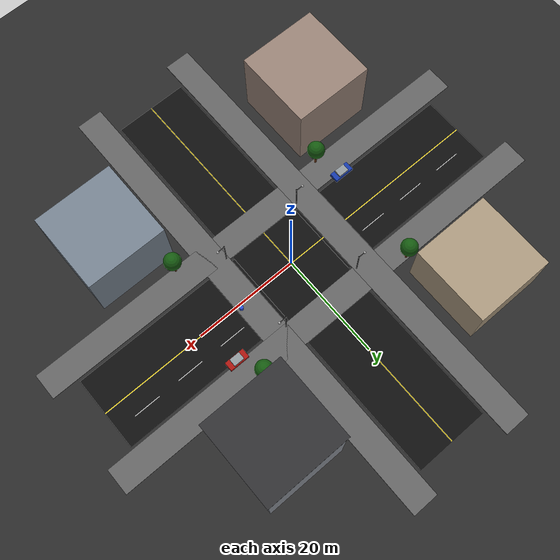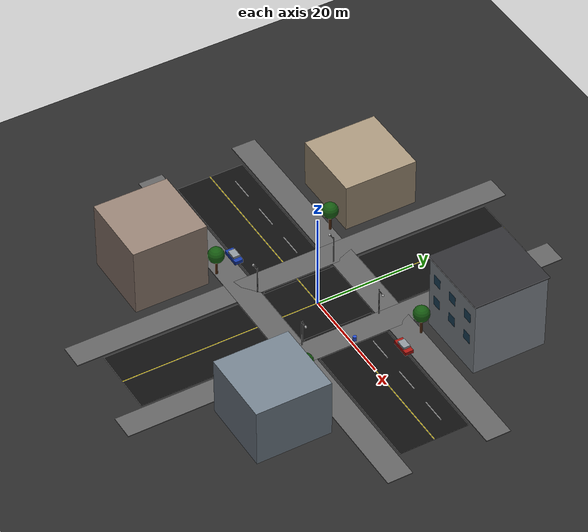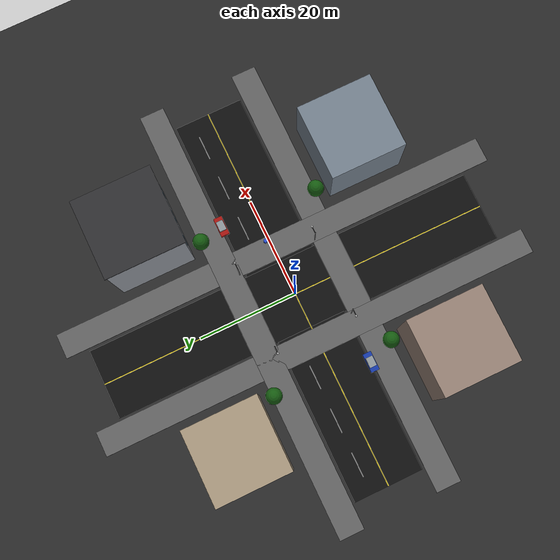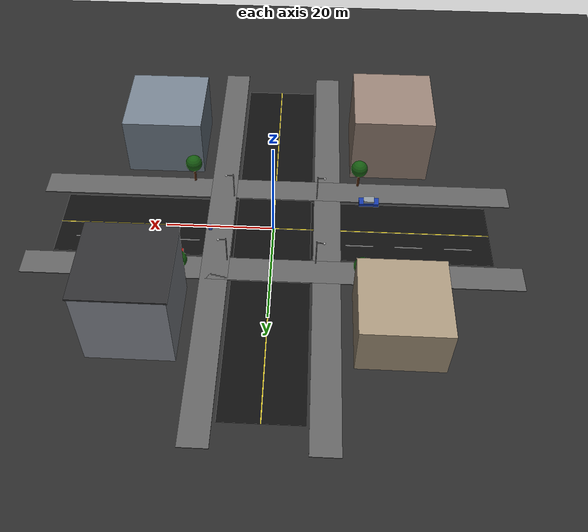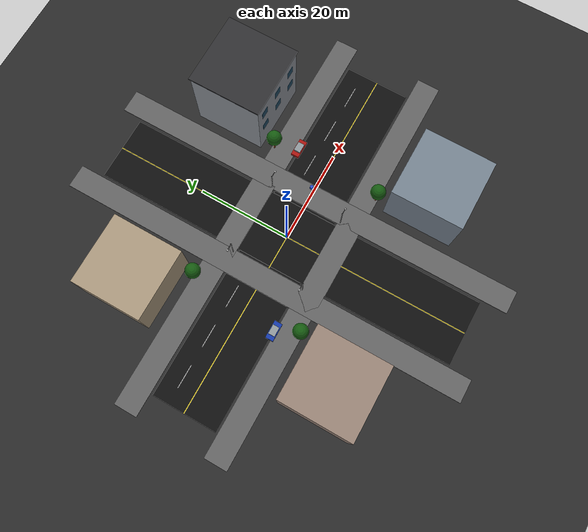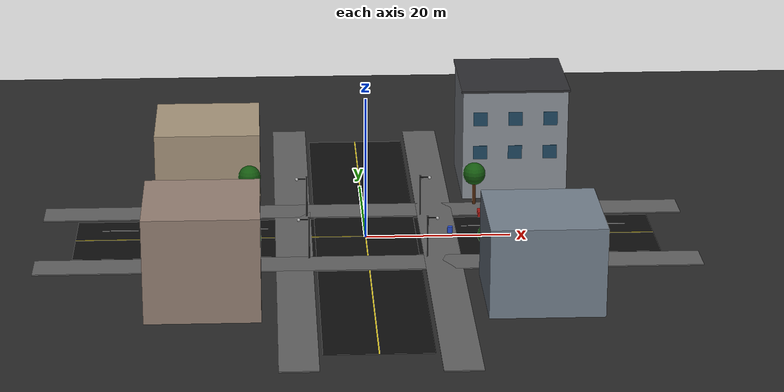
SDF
<sdf version="1.7">
 <world name="urban_city_world">
  <plugin name="gazebo_ros_state" filename="libgazebo_ros_state.so"/>
  <physics type="ode">
   <max_step_size>0.001</max_step_size>
   <real_time_update_rate>1000</real_time_update_rate>
   <real_time_factor>1</real_time_factor>
  </physics>
  <light name="sun" type="directional">
   <pose>0 0 10 0 -0 0</pose>
   <diffuse>0.8 0.8 0.8 1</diffuse>
   <specular>0.2 0.2 0.2 1</specular>
   <attenuation>
    <range>1000</range>
    <constant>0.9</constant>
    <linear>0.01</linear>
    <quadratic>0.001</quadratic>
   </attenuation>
   <direction>-0.5 0.1 -0.9</direction>
   <spot><inner_angle>0</inner_angle><outer_angle>0</outer_angle><falloff>0</falloff></spot>
  </light>
  <light name="city_sky_light" type="directional">
   <pose>0 0 40 0 -0 0</pose>
   <diffuse>0.9 0.9 0.9 1</diffuse>
   <specular>0.25 0.25 0.25 1</specular>
   <direction>-0.35 -0.45 -1</direction>
   <attenuation><range>10</range></attenuation>
   <spot><inner_angle>0</inner_angle><outer_angle>0</outer_angle><falloff>0</falloff></spot>
  </light>
  <model name="ground">
   <static>1</static>
   <link name="ground_link">
    <collision name="ground_collision">
     <geometry><plane><normal>0 0 1</normal><size>120 120</size></plane></geometry>
    </collision>
    <visual name="ground_visual">
     <geometry><plane><normal>0 0 1</normal><size>120 120</size></plane></geometry>
     <material>
      <ambient>0.12 0.12 0.12 1</ambient>
      <diffuse>0.16 0.16 0.16 1</diffuse>
      <specular>0.03 0.03 0.03 1</specular>
     </material>
    </visual>
   </link>
  </model>
  <model name="main_road">
   <static>1</static>
   <link name="road_link">
    <pose>0 0 0.015 0 -0 0</pose>
    <collision name="road_collision"><geometry><box><size>80 14 0.03</size></box></geometry></collision>
    <visual name="road_visual">
     <geometry><box><size>80 14 0.03</size></box></geometry>
     <material>
      <ambient>0.045 0.045 0.045 1</ambient>
      <diffuse>0.055 0.055 0.055 1</diffuse>
      <specular>0.02 0.02 0.02 1</specular>
     </material>
    </visual>
   </link>
  </model>
  <model name="cross_road">
   <static>1</static>
   <link name="road_link">
    <pose>0 0 0.016 0 -0 0</pose>
    <collision name="road_collision"><geometry><box><size>14 80 0.03</size></box></geometry></collision>
    <visual name="road_visual">
     <geometry><box><size>14 80 0.03</size></box></geometry>
     <material><diffuse>0.055 0.055 0.055 1</diffuse></material>
    </visual>
   </link>
  </model>
  <model name="sidewalk_north">
   <static>1</static>
   <link name="link">
    <pose>0 10 0.08 0 -0 0</pose>
    <visual name="visual">
     <geometry><box><size>90 5 0.15</size></box></geometry>
     <material><diffuse>0.38 0.38 0.38 1</diffuse></material>
    </visual>
   </link>
  </model>
  <model name="sidewalk_south">
   <static>1</static>
   <link name="link">
    <pose>0 -10 0.08 0 -0 0</pose>
    <visual name="visual">
     <geometry><box><size>90 5 0.15</size></box></geometry>
     <material><diffuse>0.38 0.38 0.38 1</diffuse></material>
    </visual>
   </link>
  </model>
  <model name="sidewalk_east">
   <pose>0.0685 -0.539138 0 0 -0 0</pose>
   <static>1</static>
   <link name="link">
    <pose>10 0 0.08 0 -0 0</pose>
    <visual name="visual">
     <geometry><box><size>5 90 0.15</size></box></geometry>
     <material><diffuse>0.38 0.38 0.38 1</diffuse></material>
    </visual>
   </link>
  </model>
  <model name="sidewalk_west">
   <static>1</static>
   <link name="link">
    <pose>-10 0 0.08 0 -0 0</pose>
    <visual name="visual">
     <geometry><box><size>5 90 0.15</size></box></geometry>
     <material><diffuse>0.38 0.38 0.38 1</diffuse></material>
    </visual>
   </link>
  </model>
  <model name="center_line">
   <static>1</static>
   <link name="link">
    <pose>0 0 0.045 0 -0 0</pose>
    <visual name="visual">
     <geometry><box><size>80 0.18 0.025</size></box></geometry>
     <material><diffuse>0.95 0.85 0.15 1</diffuse></material>
    </visual>
   </link>
  </model>
  <model name="cross_center_line">
   <static>1</static>
   <link name="link">
    <pose>0 0 0.046 0 -0 0</pose>
    <visual name="visual">
     <geometry><box><size>0.18 80 0.025</size></box></geometry>
     <material><diffuse>0.95 0.85 0.15 1</diffuse></material>
    </visual>
   </link>
  </model>
  <model name="dash_01">
   <static>1</static>
   <link name="l">
    <pose>-34 3.5 0.05 0 -0 0</pose>
    <visual name="v">
     <geometry><box><size>5 0.12 0.025</size></box></geometry>
     <material><diffuse>0.9 0.9 0.9 1</diffuse></material>
    </visual>
   </link>
  </model>
  <model name="dash_02">
   <static>1</static>
   <link name="l">
    <pose>-25 3.5 0.05 0 -0 0</pose>
    <visual name="v">
     <geometry><box><size>5 0.12 0.025</size></box></geometry>
     <material><diffuse>0.9 0.9 0.9 1</diffuse></material>
    </visual>
   </link>
  </model>
  <model name="dash_03">
   <static>1</static>
   <link name="l">
    <pose>-16 3.5 0.05 0 -0 0</pose>
    <visual name="v">
     <geometry><box><size>5 0.12 0.025</size></box></geometry>
     <material><diffuse>0.9 0.9 0.9 1</diffuse></material>
    </visual>
   </link>
  </model>
  <model name="dash_04">
   <static>1</static>
   <link name="l">
    <pose>16 3.5 0.05 0 -0 0</pose>
    <visual name="v">
     <geometry><box><size>5 0.12 0.025</size></box></geometry>
     <material><diffuse>0.9 0.9 0.9 1</diffuse></material>
    </visual>
   </link>
  </model>
  <model name="dash_05">
   <static>1</static>
   <link name="l">
    <pose>25 3.5 0.05 0 -0 0</pose>
    <visual name="v">
     <geometry><box><size>5 0.12 0.025</size></box></geometry>
     <material><diffuse>0.9 0.9 0.9 1</diffuse></material>
    </visual>
   </link>
  </model>
  <model name="dash_06">
   <static>1</static>
   <link name="l">
    <pose>34 3.5 0.05 0 -0 0</pose>
    <visual name="v">
     <geometry><box><size>5 0.12 0.025</size></box></geometry>
     <material><diffuse>0.9 0.9 0.9 1</diffuse></material>
    </visual>
   </link>
  </model>
  <model name="building_01">
   <static>1</static>
   <link name="building">
    <pose>22 22 8 0 -0 0</pose>
    <collision name="collision"><geometry><box><size>15 15 16</size></box></geometry></collision>
    <visual name="body">
     <geometry><box><size>15 15 16</size></box></geometry>
     <material><diffuse>0.55 0.57 0.6 1</diffuse></material>
    </visual>
    <visual name="roof">
     <pose>0 0 8.1 0 -0 0</pose>
     <geometry><box><size>15.5 15.5 0.3</size></box></geometry>
     <material><diffuse>0.18 0.18 0.19 1</diffuse></material>
    </visual>
   </link>
  </model>
  <model name="building_02">
   <static>1</static>
   <link name="building">
    <pose>-22 22 5 0 -0 0</pose>
    <collision name="collision"><geometry><box><size>15 15 10</size></box></geometry></collision>
    <visual name="body">
     <geometry><box><size>15 15 10</size></box></geometry>
     <material><diffuse>0.65 0.58 0.48 1</diffuse></material>
    </visual>
   </link>
  </model>
  <model name="building_03">
   <static>1</static>
   <link name="building">
    <pose>22 -22 6 0 -0 0</pose>
    <collision name="collision"><geometry><box><size>15 15 12</size></box></geometry></collision>
    <visual name="body">
     <geometry><box><size>15 15 12</size></box></geometry>
     <material><diffuse>0.45 0.5 0.55 1</diffuse></material>
    </visual>
   </link>
  </model>
  <model name="building_04">
   <static>1</static>
   <link name="building">
    <pose>-22 -22 7 0 -0 0</pose>
    <collision name="collision"><geometry><box><size>15 15 14</size></box></geometry></collision>
    <visual name="body">
     <geometry><box><size>15 15 14</size></box></geometry>
     <material><diffuse>0.58 0.5 0.45 1</diffuse></material>
    </visual>
   </link>
  </model>
  <model name="building_01_windows">
   <static>1</static>
   <link name="windows">
    <pose>22 14.48 8 0 -0 0</pose>
    <visual name="w1">
     <pose>-5 0 4 0 -0 0</pose>
     <geometry><box><size>2 0.05 2</size></box></geometry>
     <material><diffuse>0.12 0.28 0.38 1</diffuse></material>
    </visual>
    <visual name="w2">
     <pose>0 0 4 0 -0 0</pose>
     <geometry><box><size>2 0.05 2</size></box></geometry>
     <material><diffuse>0.12 0.28 0.38 1</diffuse></material>
    </visual>
    <visual name="w3">
     <pose>5 0 4 0 -0 0</pose>
     <geometry><box><size>2 0.05 2</size></box></geometry>
     <material><diffuse>0.12 0.28 0.38 1</diffuse></material>
    </visual>
    <visual name="w4">
     <pose>-5 0 -1 0 -0 0</pose>
     <geometry><box><size>2 0.05 2</size></box></geometry>
     <material><diffuse>0.12 0.28 0.38 1</diffuse></material>
    </visual>
    <visual name="w5">
     <pose>0 0 -1 0 -0 0</pose>
     <geometry><box><size>2 0.05 2</size></box></geometry>
     <material><diffuse>0.12 0.28 0.38 1</diffuse></material>
    </visual>
    <visual name="w6">
     <pose>5 0 -1 0 -0 0</pose>
     <geometry><box><size>2 0.05 2</size></box></geometry>
     <material><diffuse>0.12 0.28 0.38 1</diffuse></material>
    </visual>
   </link>
  </model>
  <model name="lamp_01">
   <static>1</static>
   <link name="pole">
    <pose>8 8 3 0 -0 0</pose>
    <visual name="pole">
     <geometry><cylinder><radius>0.12</radius><length>6</length></cylinder></geometry>
     <material><diffuse>0.12 0.12 0.12 1</diffuse></material>
    </visual>
    <visual name="arm">
     <pose>0.7 0 2.7 0 -0 0</pose>
     <geometry><box><size>1.5 0.12 0.12</size></box></geometry>
     <material><diffuse>0.12 0.12 0.12 1</diffuse></material>
    </visual>
    <visual name="light">
     <pose>1.35 0 2.65 0 -0 0</pose>
     <geometry><sphere><radius>0.22</radius></sphere></geometry>
     <material><emissive>1 0.9 0.5 1</emissive></material>
    </visual>
   </link>
  </model>
  <model name="lamp_02">
   <static>1</static>
   <link name="pole">
    <pose>-8 8 3 0 -0 0</pose>
    <visual name="pole">
     <geometry><cylinder><radius>0.12</radius><length>6</length></cylinder></geometry>
     <material><diffuse>0.12 0.12 0.12 1</diffuse></material>
    </visual>
    <visual name="arm">
     <pose>-0.7 0 2.7 0 -0 0</pose>
     <geometry><box><size>1.5 0.12 0.12</size></box></geometry>
     <material><diffuse>0.12 0.12 0.12 1</diffuse></material>
    </visual>
    <visual name="light">
     <pose>-1.35 0 2.65 0 -0 0</pose>
     <geometry><sphere><radius>0.22</radius></sphere></geometry>
     <material><emissive>1 0.9 0.5 1</emissive></material>
    </visual>
   </link>
  </model>
  <model name="lamp_03">
   <static>1</static>
   <link name="pole">
    <pose>8 -8 3 0 -0 0</pose>
    <visual name="pole">
     <geometry><cylinder><radius>0.12</radius><length>6</length></cylinder></geometry>
     <material><diffuse>0.12 0.12 0.12 1</diffuse></material>
    </visual>
    <visual name="arm">
     <pose>0.7 0 2.7 0 -0 0</pose>
     <geometry><box><size>1.5 0.12 0.12</size></box></geometry>
     <material><diffuse>0.12 0.12 0.12 1</diffuse></material>
    </visual>
    <visual name="light">
     <pose>1.35 0 2.65 0 -0 0</pose>
     <geometry><sphere><radius>0.22</radius></sphere></geometry>
     <material><emissive>1 0.9 0.5 1</emissive></material>
    </visual>
   </link>
  </model>
  <model name="lamp_04">
   <static>1</static>
   <link name="pole">
    <pose>-8 -8 3 0 -0 0</pose>
    <visual name="pole">
     <geometry><cylinder><radius>0.12</radius><length>6</length></cylinder></geometry>
     <material><diffuse>0.12 0.12 0.12 1</diffuse></material>
    </visual>
    <visual name="arm">
     <pose>-0.7 0 2.7 0 -0 0</pose>
     <geometry><box><size>1.5 0.12 0.12</size></box></geometry>
     <material><diffuse>0.12 0.12 0.12 1</diffuse></material>
    </visual>
    <visual name="light">
     <pose>-1.35 0 2.65 0 -0 0</pose>
     <geometry><sphere><radius>0.22</radius></sphere></geometry>
     <material><emissive>1 0.9 0.5 1</emissive></material>
    </visual>
   </link>
  </model>
  <model name="car_01">
   <static>1</static>
   <link name="body">
    <pose>18 7.2 0.55 0 -0 0</pose>
    <visual name="body">
     <geometry><box><size>3.8 1.7 0.7</size></box></geometry>
     <material><diffuse>0.65 0.08 0.06 1</diffuse></material>
    </visual>
    <visual name="roof">
     <pose>0 0 0.55 0 -0 0</pose>
     <geometry><box><size>2 1.4 0.55</size></box></geometry>
     <material><diffuse>0.55 0.58 0.6 1</diffuse></material>
    </visual>
   </link>
  </model>
  <model name="car_02">
   <static>1</static>
   <link name="body">
    <pose>-18 -7.2 0.55 0 -0 3.14159</pose>
    <visual name="body">
     <geometry><box><size>3.8 1.7 0.7</size></box></geometry>
     <material><diffuse>0.08 0.22 0.65 1</diffuse></material>
    </visual>
    <visual name="roof">
     <pose>0 0 0.55 0 -0 0</pose>
     <geometry><box><size>2 1.4 0.55</size></box></geometry>
     <material><diffuse>0.55 0.58 0.6 1</diffuse></material>
    </visual>
   </link>
  </model>
  <model name="city_tree_01">
   <static>1</static>
   <link name="trunk">
    <pose>16 12 2 0 -0 0</pose>
    <visual name="trunk">
     <geometry><cylinder><radius>0.25</radius><length>4</length></cylinder></geometry>
     <material><diffuse>0.3 0.15 0.05 1</diffuse></material>
    </visual>
   </link>
   <link name="crown">
    <pose>16 12 4.7 0 -0 0</pose>
    <visual name="leaves">
     <geometry><sphere><radius>1.6</radius></sphere></geometry>
     <material><diffuse>0.08 0.35 0.06 1</diffuse></material>
    </visual>
   </link>
  </model>
  <model name="city_tree_02">
   <static>1</static>
   <link name="trunk">
    <pose>-16 12 2 0 -0 0</pose>
    <visual name="trunk">
     <geometry><cylinder><radius>0.25</radius><length>4</length></cylinder></geometry>
     <material><diffuse>0.3 0.15 0.05 1</diffuse></material>
    </visual>
   </link>
   <link name="crown">
    <pose>-16 12 4.7 0 -0 0</pose>
    <visual name="leaves">
     <geometry><sphere><radius>1.6</radius></sphere></geometry>
     <material><diffuse>0.08 0.35 0.06 1</diffuse></material>
    </visual>
   </link>
  </model>
  <model name="city_tree_03">
   <static>1</static>
   <link name="trunk">
    <pose>16 -12 2 0 -0 0</pose>
    <visual name="trunk">
     <geometry><cylinder><radius>0.25</radius><length>4</length></cylinder></geometry>
     <material><diffuse>0.3 0.15 0.05 1</diffuse></material>
    </visual>
   </link>
   <link name="crown">
    <pose>16 -12 4.7 0 -0 0</pose>
    <visual name="leaves">
     <geometry><sphere><radius>1.6</radius></sphere></geometry>
     <material><diffuse>0.08 0.35 0.06 1</diffuse></material>
    </visual>
   </link>
  </model>
  <model name="city_tree_04">
   <static>1</static>
   <link name="trunk">
    <pose>-16 -12 2 0 -0 0</pose>
    <visual name="trunk">
     <geometry><cylinder><radius>0.25</radius><length>4</length></cylinder></geometry>
     <material><diffuse>0.3 0.15 0.05 1</diffuse></material>
    </visual>
   </link>
   <link name="crown">
    <pose>-16 -12 4.7 0 -0 0</pose>
    <visual name="leaves">
     <geometry><sphere><radius>1.6</radius></sphere></geometry>
     <material><diffuse>0.08 0.35 0.06 1</diffuse></material>
    </visual>
   </link>
  </model>
  <gravity>0 0 -9.8</gravity>
  <magnetic_field>6e-06 2.3e-05 -4.2e-05</magnetic_field>
  <atmosphere type="adiabatic"/>
  <scene><ambient>0.4 0.4 0.4 1</ambient><background>0.7 0.7 0.7 1</background><shadows>1</shadows></scene>
  <audio><device>default</device></audio>
  <spherical_coordinates>
   <surface_model>EARTH_WGS84</surface_model>
   <latitude_deg>0</latitude_deg>
   <longitude_deg>0</longitude_deg>
   <elevation>0</elevation>
   <heading_deg>0</heading_deg>
  </spherical_coordinates>
  <model name="track_object">
   <pose>11.7417 0.741888 0.52999 0 0 -1e-05</pose>
   <link name="link">
    <inertial>
     <mass>1</mass>
     <inertia><ixx>0.145833</ixx><ixy>0</ixy><ixz>0</ixz><iyy>0.145833</iyy><iyz>0</iyz><izz>0.125</izz></inertia>
    </inertial>
    <collision name="collision">
     <geometry><cylinder><radius>0.367328</radius><length>1</length></cylinder></geometry>
    </collision>
    <visual name="visual">
     <geometry><cylinder><radius>0.367328</radius><length>1</length></cylinder></geometry>
     <material>
      <script><name>Gazebo/Blue</name><uri>file://media/materials/scripts/gazebo.material</uri></script>
     </material>
    </visual>
   </link>
  </model>
 </world>
</sdf>
